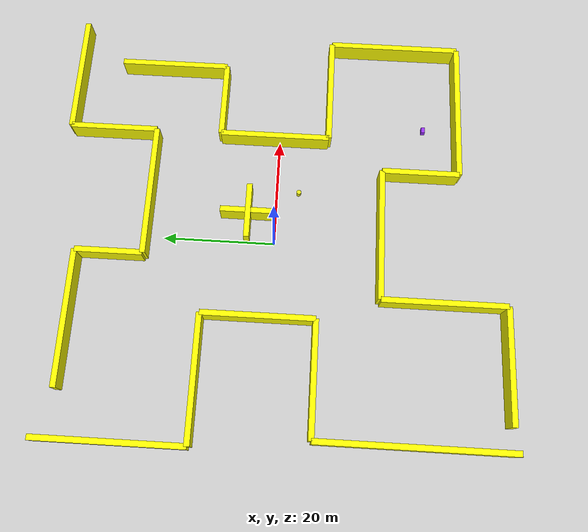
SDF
<sdf version="1.8">
 <world name="semantic_segmentation_world">
  <model name="ground_plane">
   <static>true</static>
   <link name="link">
    <collision name="collision">
     <geometry><plane><normal>0 0 1</normal><size>120 120</size></plane></geometry>
     <surface><friction><ode><mu>1.0</mu><mu2>0.8</mu2></ode></friction></surface>
    </collision>
    <visual name="visual">
     <geometry><plane><normal>0 0 1</normal><size>100 100</size></plane></geometry>
     <material>
      <ambient>0.8 0.8 0.8 1</ambient>
      <diffuse>0.8 0.8 0.8 1</diffuse>
      <specular>0.8 0.8 0.8 1</specular>
     </material>
    </visual>
   </link>
  </model>
  <model name="large_bent_maze">
   <static>true</static>
   <link name="maze_walls">
    <collision name="m01c">
     <pose>-34 -25 2 0 0 0</pose>
     <geometry><box><size>1 34 4</size></box></geometry>
    </collision>
    <visual name="m01v">
     <pose>-34 -25 2 0 0 0</pose>
     <geometry><box><size>1 34 4</size></box></geometry>
     <material><ambient>1 1 0 1</ambient><diffuse>1 1 0 1</diffuse></material>
    </visual>
    <collision name="m02c">
     <pose>-24 -8 2 0 0 0</pose>
     <geometry><box><size>20 1 4</size></box></geometry>
    </collision>
    <visual name="m02v">
     <pose>-24 -8 2 0 0 0</pose>
     <geometry><box><size>20 1 4</size></box></geometry>
     <material><ambient>1 1 0 1</ambient><diffuse>1 1 0 1</diffuse></material>
    </visual>
    <collision name="m03c">
     <pose>-14 2 2 0 0 0</pose>
     <geometry><box><size>1 20 4</size></box></geometry>
    </collision>
    <visual name="m03v">
     <pose>-14 2 2 0 0 0</pose>
     <geometry><box><size>1 20 4</size></box></geometry>
     <material><ambient>1 1 0 1</ambient><diffuse>1 1 0 1</diffuse></material>
    </visual>
    <collision name="m04c">
     <pose>-25 12 2 0 0 0</pose>
     <geometry><box><size>22 1 4</size></box></geometry>
    </collision>
    <visual name="m04v">
     <pose>-25 12 2 0 0 0</pose>
     <geometry><box><size>22 1 4</size></box></geometry>
     <material><ambient>1 1 0 1</ambient><diffuse>1 1 0 1</diffuse></material>
    </visual>
    <collision name="m05c">
     <pose>-36 25 2 0 0 0</pose>
     <geometry><box><size>1 26 4</size></box></geometry>
    </collision>
    <visual name="m05v">
     <pose>-36 25 2 0 0 0</pose>
     <geometry><box><size>1 26 4</size></box></geometry>
     <material><ambient>1 1 0 1</ambient><diffuse>1 1 0 1</diffuse></material>
    </visual>
    <collision name="m06c">
     <pose>-16 35 2 0 0 0</pose>
     <geometry><box><size>24 1 4</size></box></geometry>
    </collision>
    <visual name="m06v">
     <pose>-16 35 2 0 0 0</pose>
     <geometry><box><size>24 1 4</size></box></geometry>
     <material><ambient>1 1 0 1</ambient><diffuse>1 1 0 1</diffuse></material>
    </visual>
    <collision name="m07c">
     <pose>-4 29 2 0 0 0</pose>
     <geometry><box><size>1 12 4</size></box></geometry>
    </collision>
    <visual name="m07v">
     <pose>-4 29 2 0 0 0</pose>
     <geometry><box><size>1 12 4</size></box></geometry>
     <material><ambient>1 1 0 1</ambient><diffuse>1 1 0 1</diffuse></material>
    </visual>
    <collision name="m08c">
     <pose>8 23 2 0 0 0</pose>
     <geometry><box><size>24 1 4</size></box></geometry>
    </collision>
    <visual name="m08v">
     <pose>8 23 2 0 0 0</pose>
     <geometry><box><size>24 1 4</size></box></geometry>
     <material><ambient>1 1 0 1</ambient><diffuse>1 1 0 1</diffuse></material>
    </visual>
    <collision name="m09c">
     <pose>20 31 2 0 0 0</pose>
     <geometry><box><size>1 16 4</size></box></geometry>
    </collision>
    <visual name="m09v">
     <pose>20 31 2 0 0 0</pose>
     <geometry><box><size>1 16 4</size></box></geometry>
     <material><ambient>1 1 0 1</ambient><diffuse>1 1 0 1</diffuse></material>
    </visual>
    <collision name="m10c">
     <pose>31 39 2 0 0 0</pose>
     <geometry><box><size>22 1 4</size></box></geometry>
    </collision>
    <visual name="m10v">
     <pose>31 39 2 0 0 0</pose>
     <geometry><box><size>22 1 4</size></box></geometry>
     <material><ambient>1 1 0 1</ambient><diffuse>1 1 0 1</diffuse></material>
    </visual>
    <collision name="m11c">
     <pose>34 21 2 0 0 0</pose>
     <geometry><box><size>1 20 4</size></box></geometry>
    </collision>
    <visual name="m11v">
     <pose>34 21 2 0 0 0</pose>
     <geometry><box><size>1 20 4</size></box></geometry>
     <material><ambient>1 1 0 1</ambient><diffuse>1 1 0 1</diffuse></material>
    </visual>
    <collision name="m12c">
     <pose>27 11 2 0 0 0</pose>
     <geometry><box><size>14 1 4</size></box></geometry>
    </collision>
    <visual name="m12v">
     <pose>27 11 2 0 0 0</pose>
     <geometry><box><size>14 1 4</size></box></geometry>
     <material><ambient>1 1 0 1</ambient><diffuse>1 1 0 1</diffuse></material>
    </visual>
    <collision name="m13c">
     <pose>20 1 2 0 0 0</pose>
     <geometry><box><size>1 20 4</size></box></geometry>
    </collision>
    <visual name="m13v">
     <pose>20 1 2 0 0 0</pose>
     <geometry><box><size>1 20 4</size></box></geometry>
     <material><ambient>1 1 0 1</ambient><diffuse>1 1 0 1</diffuse></material>
    </visual>
    <collision name="m14c">
     <pose>30 -9 2 0 0 0</pose>
     <geometry><box><size>20 1 4</size></box></geometry>
    </collision>
    <visual name="m14v">
     <pose>30 -9 2 0 0 0</pose>
     <geometry><box><size>20 1 4</size></box></geometry>
     <material><ambient>1 1 0 1</ambient><diffuse>1 1 0 1</diffuse></material>
    </visual>
    <collision name="m15c">
     <pose>40 -21 2 0 0 0</pose>
     <geometry><box><size>1 24 4</size></box></geometry>
    </collision>
    <visual name="m15v">
     <pose>40 -21 2 0 0 0</pose>
     <geometry><box><size>1 24 4</size></box></geometry>
     <material><ambient>1 1 0 1</ambient><diffuse>1 1 0 1</diffuse></material>
    </visual>
    <collision name="m16c">
     <pose>27 -33 2 0 0 0</pose>
     <geometry><box><size>26 1 4</size></box></geometry>
    </collision>
    <visual name="m16v">
     <pose>27 -33 2 0 0 0</pose>
     <geometry><box><size>26 1 4</size></box></geometry>
     <material><ambient>1 1 0 1</ambient><diffuse>1 1 0 1</diffuse></material>
    </visual>
    <collision name="m17c">
     <pose>14 -26 2 0 0 0</pose>
     <geometry><box><size>1 14 4</size></box></geometry>
    </collision>
    <visual name="m17v">
     <pose>14 -26 2 0 0 0</pose>
     <geometry><box><size>1 14 4</size></box></geometry>
     <material><ambient>1 1 0 1</ambient><diffuse>1 1 0 1</diffuse></material>
    </visual>
    <collision name="m18c">
     <pose>2 -19 2 0 0 0</pose>
     <geometry><box><size>24 1 4</size></box></geometry>
    </collision>
    <visual name="m18v">
     <pose>2 -19 2 0 0 0</pose>
     <geometry><box><size>24 1 4</size></box></geometry>
     <material><ambient>1 1 0 1</ambient><diffuse>1 1 0 1</diffuse></material>
    </visual>
    <collision name="m19c">
     <pose>-10 -30 2 0 0 0</pose>
     <geometry><box><size>1 22 4</size></box></geometry>
    </collision>
    <visual name="m19v">
     <pose>-10 -30 2 0 0 0</pose>
     <geometry><box><size>1 22 4</size></box></geometry>
     <material><ambient>1 1 0 1</ambient><diffuse>1 1 0 1</diffuse></material>
    </visual>
    <collision name="m20c">
     <pose>-20 -41 2 0 0 0</pose>
     <geometry><box><size>20 1 4</size></box></geometry>
    </collision>
    <visual name="m20v">
     <pose>-20 -41 2 0 0 0</pose>
     <geometry><box><size>20 1 4</size></box></geometry>
     <material><ambient>1 1 0 1</ambient><diffuse>1 1 0 1</diffuse></material>
    </visual>
    <collision name="m21c"><pose>5 5 2 0 0 0</pose><geometry><box><size>10 1 4</size></box></geometry></collision>
    <visual name="m21v">
     <pose>5 5 2 0 0 0</pose>
     <geometry><box><size>10 1 4</size></box></geometry>
     <material><ambient>1 1 0 1</ambient><diffuse>1 1 0 1</diffuse></material>
    </visual>
    <collision name="m22c"><pose>5 5 2 0 0 0</pose><geometry><box><size>1 10 4</size></box></geometry></collision>
    <visual name="m22v">
     <pose>5 5 2 0 0 0</pose>
     <geometry><box><size>1 10 4</size></box></geometry>
     <material><ambient>1 1 0 1</ambient><diffuse>1 1 0 1</diffuse></material>
    </visual>
   </link>
   <plugin filename="ignition-gazebo-label-system" name="ignition::gazebo::systems::Label">
    <label>5</label>
   </plugin>
  </model>
  <model name="dynamic_obstacle_3">
   <static>true</static>
   <pose>24 -27 0.6 0 0 0</pose>
   <link name="body">
    <inertial><mass>1</mass><inertia><ixx>0.12</ixx><iyy>0.12</iyy><izz>0.12</izz></inertia></inertial>
    <velocity_decay><linear>0.4</linear><angular>0.8</angular></velocity_decay>
    <collision name="collision">
     <geometry><box><size>1.0 0.7 1.2</size></box></geometry>
     <surface><friction><ode><mu>0.2</mu><mu2>0.2</mu2></ode></friction></surface>
    </collision>
    <visual name="visual">
     <geometry><box><size>1.0 0.7 1.2</size></box></geometry>
     <material><ambient>0.6 0.2 1 1</ambient><diffuse>0.6 0.2 1 1</diffuse></material>
    </visual>
   </link>
   <plugin filename="ignition-gazebo-label-system" name="ignition::gazebo::systems::Label">
    <label>6</label>
   </plugin>
   <plugin filename="libssmi_periodic_motion_system.so" name="semantic_segmentation_husky::PeriodicMotionSystem">
    <offset>10 10 0</offset>
    <period>45</period>
    <phase>11.25</phase>
   </plugin>
  </model>
  <model name="dynamic_obstacle_8">
   <static>true</static>
   <pose>10 -4 0.55 0 0 -1.5708</pose>
   <link name="body">
    <inertial><mass>1</mass><inertia><ixx>0.1</ixx><iyy>0.1</iyy><izz>0.1</izz></inertia></inertial>
    <velocity_decay><linear>0.4</linear><angular>0.8</angular></velocity_decay>
    <collision name="collision">
     <geometry><cylinder><radius>0.42</radius><length>1.1</length></cylinder></geometry>
     <surface><friction><ode><mu>0.2</mu><mu2>0.2</mu2></ode></friction></surface>
    </collision>
    <visual name="visual">
     <geometry><cylinder><radius>0.42</radius><length>1.1</length></cylinder></geometry>
     <material><ambient>0.9 0.9 0.1 1</ambient><diffuse>0.9 0.9 0.1 1</diffuse></material>
    </visual>
   </link>
   <plugin filename="ignition-gazebo-label-system" name="ignition::gazebo::systems::Label">
    <label>6</label>
   </plugin>
   <plugin filename="libssmi_periodic_motion_system.so" name="semantic_segmentation_husky::PeriodicMotionSystem">
    <offset>0 -12 0</offset>
    <period>36</period>
    <phase>9</phase>
   </plugin>
  </model>
 </world>
</sdf>
